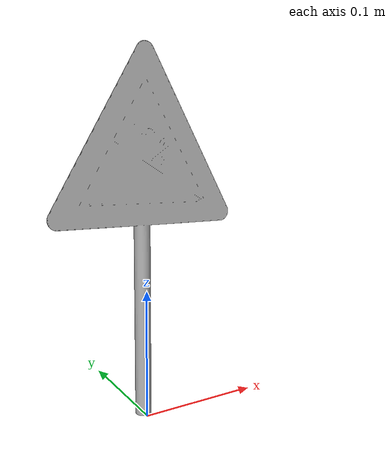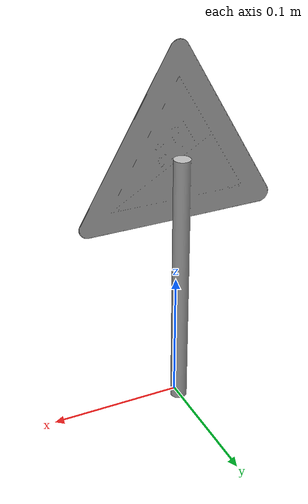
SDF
<?xml version="1.0"?>
<sdf version="1.5">
    <model name="Downhill_grade">
      <pose>0 0 0  0 0 0</pose>
      <static>true</static>
      <link name="body">
        <visual name="visual">
          <geometry>
            <mesh>
	      <uri>model://meshes/Downhill_grade.dae</uri>
	      <scale>1 1 1</scale>
	    </mesh>
          </geometry>
        </visual>
      </link>
    </model>
</sdf>
